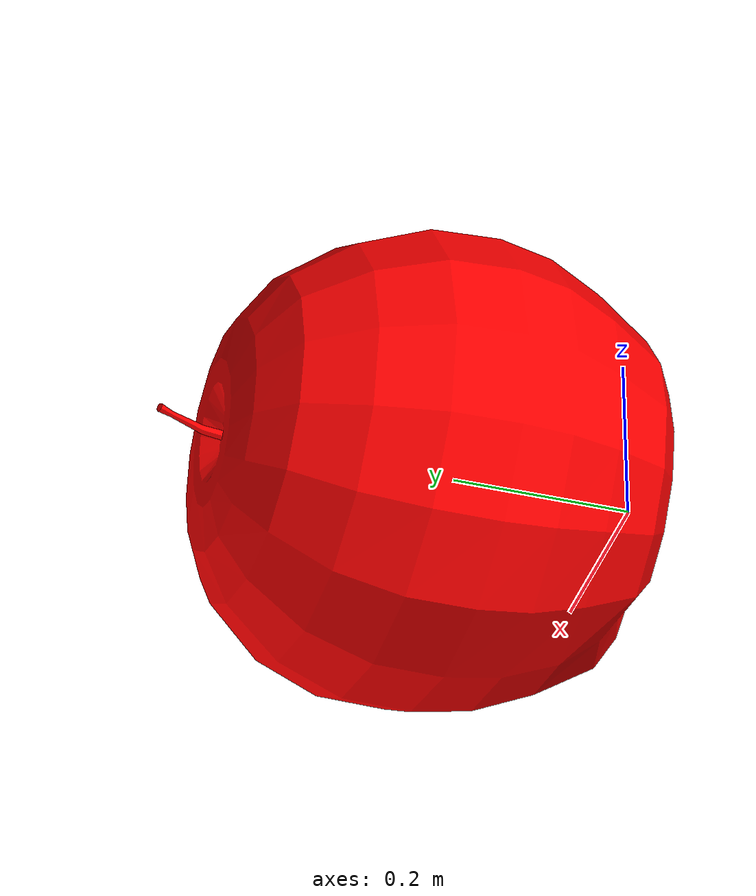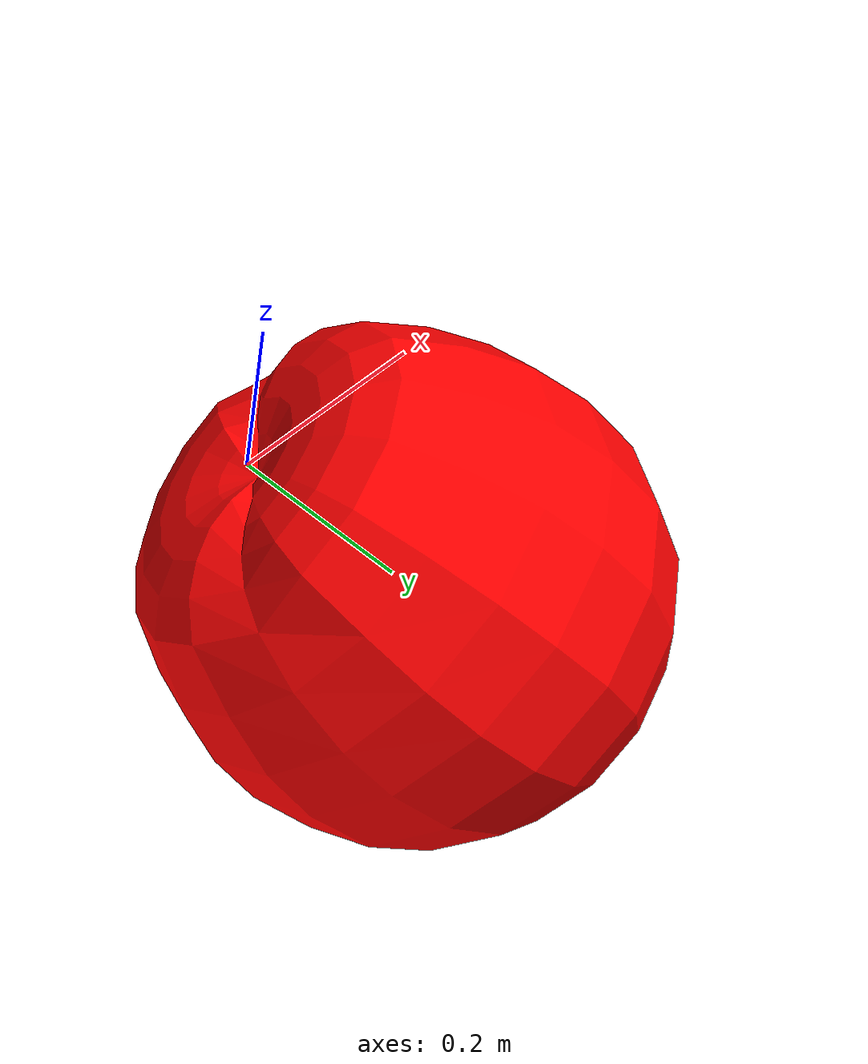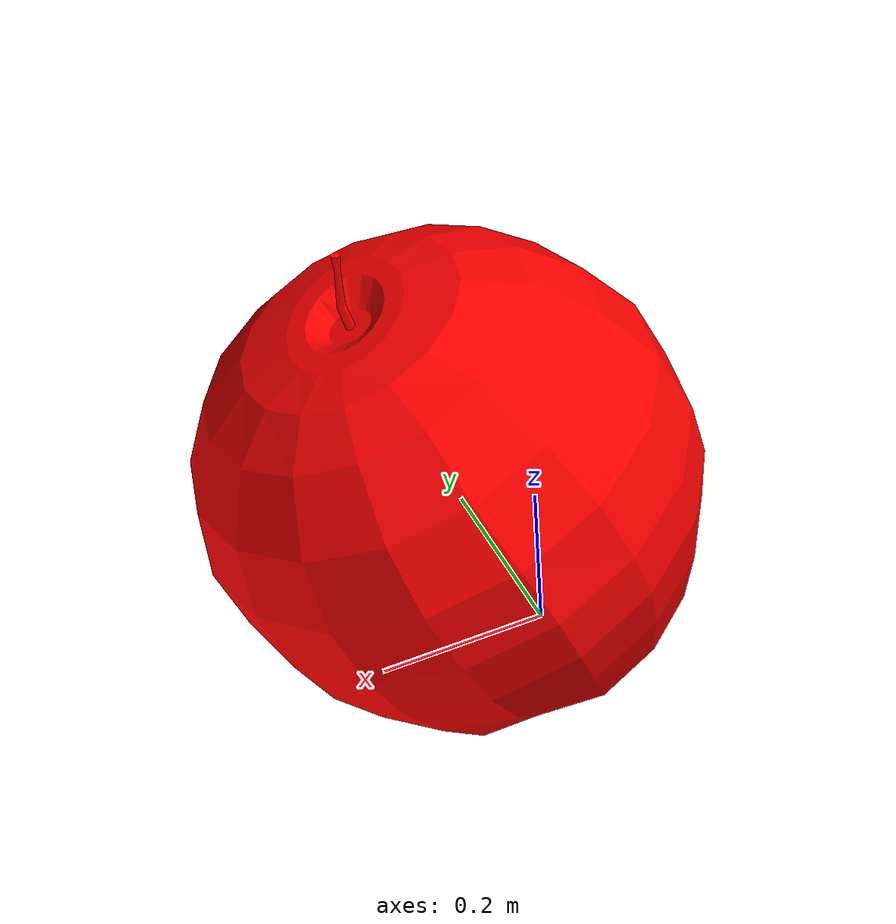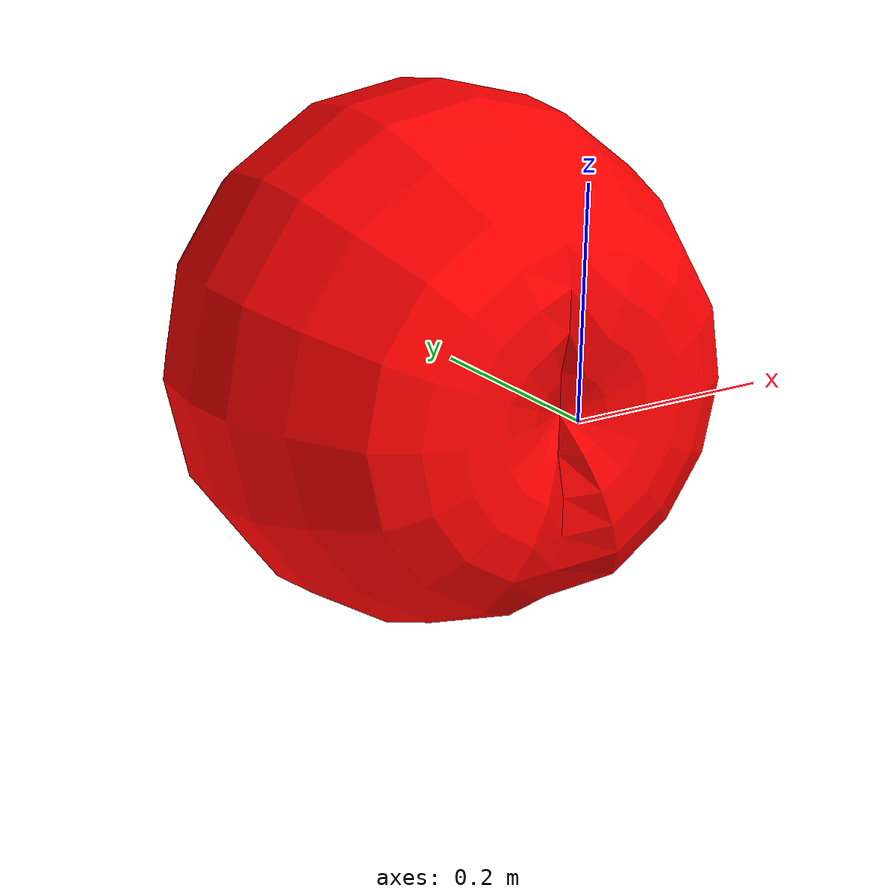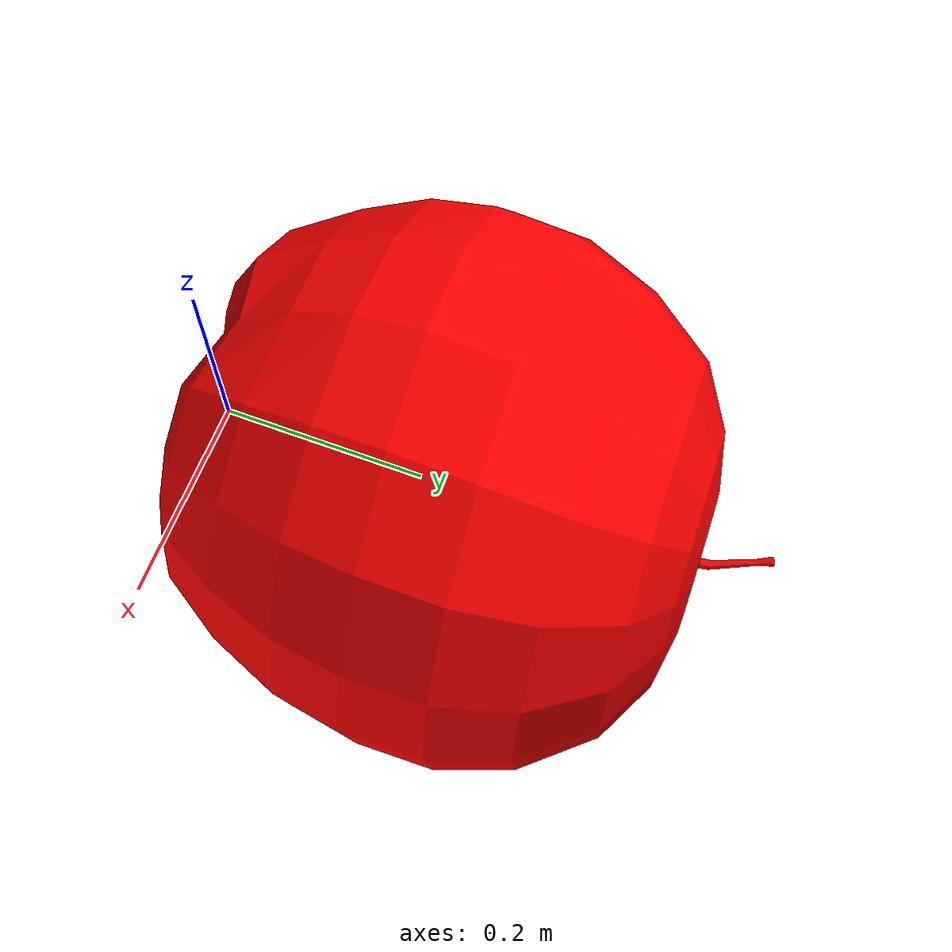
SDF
<?xml version="1.0" ?>
<sdf version="1.9">
  <model name="apple">
    <link name="apple_link">
      <!-- Inertial properties for realistic physics -->
      <inertial>
        <mass>0.18</mass>
        <pose>0 0 0 0 0 0</pose>
        <inertia>
          <ixx>0.001</ixx>
          <ixy>0</ixy>
          <ixz>0</ixz>
          <iyy>0.001</iyy>
          <iyz>0</iyz>
          <izz>0.001</izz>
        </inertia>
      </inertial>

      <visual name="apple_visual">
        <geometry>
          <mesh>
            <uri>apple.obj</uri>
            <scale>1 1 1</scale>
          </mesh>
        </geometry>

         <material>
          <diffuse>1.0 0.0 0.0 1.0</diffuse>
          <ambient>1.0 0.0 0.0 1.0</ambient>
        </material>
      </visual>

      <!-- optional collision -->
      <collision name="apple_collision">
        <geometry>
          <mesh>
            <uri>apple.obj</uri>
            <scale>1 1 1</scale>
          </mesh>
        </geometry>
        <drake:proximity_properties>
          <drake:compliant_hydroelastic/>
          <drake:hydroelastic_modulus>5e5</drake:hydroelastic_modulus>
          <drake:mesh_resolution_hint>0.005</drake:mesh_resolution_hint>
          <drake:hunt_crossley_dissipation>100.0</drake:hunt_crossley_dissipation>
          <drake:mu_dynamic>1.0</drake:mu_dynamic>
          <drake:mu_static>1.5</drake:mu_static>
        </drake:proximity_properties>
      </collision>
    </link>
  </model>
</sdf>
